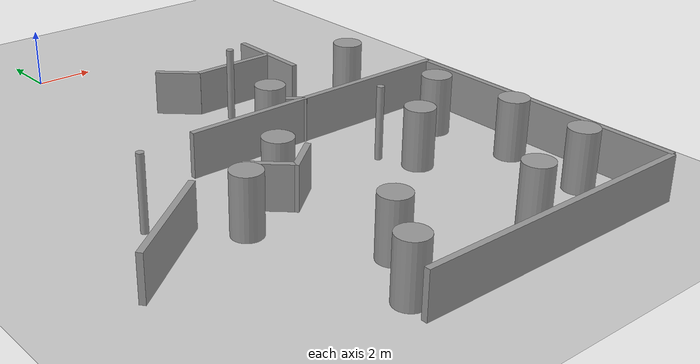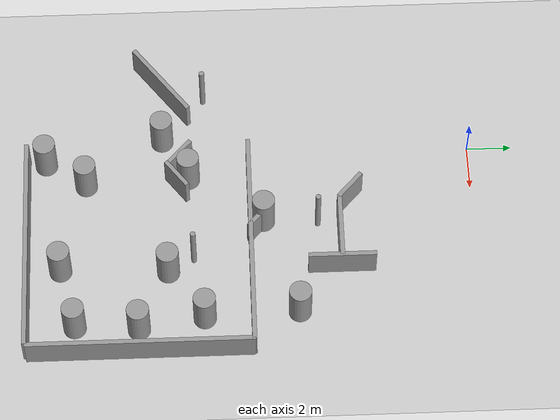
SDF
<sdf version="1.7">
 <world name="default">
  <model name="ground_plane">
   <static>1</static>
   <link name="link">
    <collision name="collision">
     <geometry><plane><normal>0 0 1</normal><size>100 100</size></plane></geometry>
     <surface><friction><ode><mu>100</mu><mu2>50</mu2></ode></friction></surface>
    </collision>
    <visual name="visual">
     <cast_shadows>0</cast_shadows>
     <geometry><plane><normal>0 0 1</normal><size>100 100</size></plane></geometry>
     <material>
      <script><uri>file://media/materials/scripts/gazebo.material</uri><name>Gazebo/Grey</name></script>
     </material>
    </visual>
   </link>
  </model>
  <model name="wall_10x3_clone_1">
   <link name="link">
    <inertial>
     <mass>1</mass>
     <inertia>
      <ixx>0.166667</ixx>
      <ixy>0</ixy>
      <ixz>0</ixz>
      <iyy>0.166667</iyy>
      <iyz>0</iyz>
      <izz>0.166667</izz>
     </inertia>
    </inertial>
    <visual name="visual">
     <geometry><box><size>10 0.2 1.5</size></box></geometry>
     <material>
      <script><name>Gazebo/Grey</name><uri>file://media/materials/scripts/gazebo.material</uri></script>
      <shader type="pixel"><normal_map>__default__</normal_map></shader>
      <ambient>0.3 0.3 0.3 1</ambient>
      <diffuse>0.7 0.7 0.7 1</diffuse>
      <specular>0.01 0.01 0.01 1</specular>
      <emissive>0 0 0 1</emissive>
     </material>
    </visual>
    <collision name="collision">
     <geometry><box><size>10 0.2 1.5</size></box></geometry>
     <surface>
      <friction>
       <ode><mu>1</mu><mu2>1</mu2><fdir1>0 0 0</fdir1><slip1>0</slip1><slip2>0</slip2></ode>
       <torsional>
        <coefficient>1</coefficient>
        <patch_radius>0</patch_radius>
        <surface_radius>0</surface_radius>
        <use_patch_radius>1</use_patch_radius>
        <ode><slip>0</slip></ode>
       </torsional>
      </friction>
      <bounce><restitution_coefficient>0</restitution_coefficient><threshold>1e+06</threshold></bounce>
      <contact>
       <collide_without_contact>0</collide_without_contact>
       <collide_without_contact_bitmask>1</collide_without_contact_bitmask>
       <collide_bitmask>1</collide_bitmask>
       <ode>
        <soft_cfm>0</soft_cfm>
        <soft_erp>0.2</soft_erp>
        <kp>1e+13</kp>
        <kd>1</kd>
        <max_vel>0.01</max_vel>
        <min_depth>0</min_depth>
       </ode>
       <bullet>
        <split_impulse>1</split_impulse>
        <split_impulse_penetration_threshold>-0.01</split_impulse_penetration_threshold>
        <soft_cfm>0</soft_cfm>
        <soft_erp>0.2</soft_erp>
        <kp>1e+13</kp>
        <kd>1</kd>
       </bullet>
      </contact>
     </surface>
    </collision>
   </link>
   <static>1</static>
   <pose>5 -10 0.75 0 -0 0</pose>
  </model>
  <model name="wall_10x3_clone_3_clone_0_clone_clone_clone_clone_0">
   <link name="link">
    <inertial>
     <mass>1</mass>
     <inertia>
      <ixx>0.166667</ixx>
      <ixy>0</ixy>
      <ixz>0</ixz>
      <iyy>0.166667</iyy>
      <iyz>0</iyz>
      <izz>0.166667</izz>
     </inertia>
    </inertial>
    <visual name="visual">
     <geometry><box><size>3 0.2 1.5</size></box></geometry>
     <material>
      <script><name>Gazebo/Grey</name><uri>file://media/materials/scripts/gazebo.material</uri></script>
      <shader type="pixel"><normal_map>__default__</normal_map></shader>
      <ambient>0.3 0.3 0.3 1</ambient>
      <diffuse>0.7 0.7 0.7 1</diffuse>
      <specular>0.01 0.01 0.01 1</specular>
      <emissive>0 0 0 1</emissive>
     </material>
    </visual>
    <collision name="collision">
     <geometry><box><size>3 0.2 1.5</size></box></geometry>
     <surface>
      <friction>
       <ode><mu>1</mu><mu2>1</mu2><fdir1>0 0 0</fdir1><slip1>0</slip1><slip2>0</slip2></ode>
       <torsional>
        <coefficient>1</coefficient>
        <patch_radius>0</patch_radius>
        <surface_radius>0</surface_radius>
        <use_patch_radius>1</use_patch_radius>
        <ode><slip>0</slip></ode>
       </torsional>
      </friction>
      <bounce><restitution_coefficient>0</restitution_coefficient><threshold>1e+06</threshold></bounce>
      <contact>
       <collide_without_contact>0</collide_without_contact>
       <collide_without_contact_bitmask>1</collide_without_contact_bitmask>
       <collide_bitmask>1</collide_bitmask>
       <ode>
        <soft_cfm>0</soft_cfm>
        <soft_erp>0.2</soft_erp>
        <kp>1e+13</kp>
        <kd>1</kd>
        <max_vel>0.01</max_vel>
        <min_depth>0</min_depth>
       </ode>
       <bullet>
        <split_impulse>1</split_impulse>
        <split_impulse_penetration_threshold>-0.01</split_impulse_penetration_threshold>
        <soft_cfm>0</soft_cfm>
        <soft_erp>0.2</soft_erp>
        <kp>1e+13</kp>
        <kd>1</kd>
       </bullet>
      </contact>
     </surface>
    </collision>
   </link>
   <static>1</static>
   <pose>6 -6 0.75 0 -0 1.5708</pose>
  </model>
  <model name="wall_10x3_clone_3_clone_0_clone_clone_clone_clone_clone">
   <link name="link">
    <inertial>
     <mass>1</mass>
     <inertia>
      <ixx>0.166667</ixx>
      <ixy>0</ixy>
      <ixz>0</ixz>
      <iyy>0.166667</iyy>
      <iyz>0</iyz>
      <izz>0.166667</izz>
     </inertia>
    </inertial>
    <visual name="visual">
     <geometry><box><size>3 0.2 1.5</size></box></geometry>
     <material>
      <script><name>Gazebo/Grey</name><uri>file://media/materials/scripts/gazebo.material</uri></script>
      <shader type="pixel"><normal_map>__default__</normal_map></shader>
      <ambient>0.3 0.3 0.3 1</ambient>
      <diffuse>0.7 0.7 0.7 1</diffuse>
      <specular>0.01 0.01 0.01 1</specular>
      <emissive>0 0 0 1</emissive>
     </material>
    </visual>
    <collision name="collision">
     <geometry><box><size>3 0.2 1.5</size></box></geometry>
     <surface>
      <friction>
       <ode><mu>1</mu><mu2>1</mu2><fdir1>0 0 0</fdir1><slip1>0</slip1><slip2>0</slip2></ode>
       <torsional>
        <coefficient>1</coefficient>
        <patch_radius>0</patch_radius>
        <surface_radius>0</surface_radius>
        <use_patch_radius>1</use_patch_radius>
        <ode><slip>0</slip></ode>
       </torsional>
      </friction>
      <bounce><restitution_coefficient>0</restitution_coefficient><threshold>1e+06</threshold></bounce>
      <contact>
       <collide_without_contact>0</collide_without_contact>
       <collide_without_contact_bitmask>1</collide_without_contact_bitmask>
       <collide_bitmask>1</collide_bitmask>
       <ode>
        <soft_cfm>0</soft_cfm>
        <soft_erp>0.2</soft_erp>
        <kp>1e+13</kp>
        <kd>1</kd>
        <max_vel>0.01</max_vel>
        <min_depth>0</min_depth>
       </ode>
       <bullet>
        <split_impulse>1</split_impulse>
        <split_impulse_penetration_threshold>-0.01</split_impulse_penetration_threshold>
        <soft_cfm>0</soft_cfm>
        <soft_erp>0.2</soft_erp>
        <kp>1e+13</kp>
        <kd>1</kd>
       </bullet>
      </contact>
     </surface>
    </collision>
   </link>
   <static>1</static>
   <pose>4.5 -6 0.75 0 -0 0</pose>
  </model>
  <model name="wall_10x3_clone_3_clone_0_clone_clone_clone_clone_clone_0_clone_clone">
   <link name="link">
    <inertial>
     <mass>0.514545</mass>
     <inertia>
      <ixx>0.0981923</ixx>
      <ixy>0</ixy>
      <ixz>0</ixz>
      <iyy>0.198649</iyy>
      <iyz>0</iyz>
      <izz>0.103887</izz>
     </inertia>
    </inertial>
    <pose>0 0 0 0 0 -0.740677</pose>
    <visual name="visual">
     <geometry><box><size>1.54363 0.2 1.5</size></box></geometry>
     <material>
      <script><name>Gazebo/Grey</name><uri>file://media/materials/scripts/gazebo.material</uri></script>
      <shader type="pixel"><normal_map>__default__</normal_map></shader>
      <ambient>0.3 0.3 0.3 1</ambient>
      <diffuse>0.7 0.7 0.7 1</diffuse>
      <specular>0.01 0.01 0.01 1</specular>
      <emissive>0 0 0 1</emissive>
     </material>
    </visual>
    <collision name="collision">
     <geometry><box><size>1.54363 0.2 1.5</size></box></geometry>
     <surface>
      <friction>
       <ode><mu>1</mu><mu2>1</mu2><fdir1>0 0 0</fdir1><slip1>0</slip1><slip2>0</slip2></ode>
       <torsional>
        <coefficient>1</coefficient>
        <patch_radius>0</patch_radius>
        <surface_radius>0</surface_radius>
        <use_patch_radius>1</use_patch_radius>
        <ode><slip>0</slip></ode>
       </torsional>
      </friction>
      <bounce><restitution_coefficient>0</restitution_coefficient><threshold>1e+06</threshold></bounce>
      <contact>
       <collide_without_contact>0</collide_without_contact>
       <collide_without_contact_bitmask>1</collide_without_contact_bitmask>
       <collide_bitmask>1</collide_bitmask>
       <ode>
        <soft_cfm>0</soft_cfm>
        <soft_erp>0.2</soft_erp>
        <kp>1e+13</kp>
        <kd>1</kd>
        <max_vel>0.01</max_vel>
        <min_depth>0</min_depth>
       </ode>
       <bullet>
        <split_impulse>1</split_impulse>
        <split_impulse_penetration_threshold>-0.01</split_impulse_penetration_threshold>
        <soft_cfm>0</soft_cfm>
        <soft_erp>0.2</soft_erp>
        <kp>1e+13</kp>
        <kd>1</kd>
       </bullet>
      </contact>
     </surface>
    </collision>
   </link>
   <static>1</static>
   <pose>0.533238 -13.1206 0.75 0 -0 0</pose>
  </model>
  <model name="wall_10x3_clone_3_clone_0_clone_clone_clone_clone_clone_0_clone_clone_clone">
   <link name="link">
    <inertial>
     <mass>0.514545</mass>
     <inertia>
      <ixx>0.0981923</ixx>
      <ixy>0</ixy>
      <ixz>0</ixz>
      <iyy>0.198649</iyy>
      <iyz>0</iyz>
      <izz>0.103887</izz>
     </inertia>
    </inertial>
    <pose>0 0 0 0 0 -2.49068</pose>
    <visual name="visual">
     <geometry><box><size>1.54363 0.2 1.5</size></box></geometry>
     <material>
      <script><name>Gazebo/Grey</name><uri>file://media/materials/scripts/gazebo.material</uri></script>
      <shader type="pixel"><normal_map>__default__</normal_map></shader>
      <ambient>0.3 0.3 0.3 1</ambient>
      <diffuse>0.7 0.7 0.7 1</diffuse>
      <specular>0.01 0.01 0.01 1</specular>
      <emissive>0 0 0 1</emissive>
     </material>
    </visual>
    <collision name="collision">
     <geometry><box><size>1.54363 0.2 1.5</size></box></geometry>
     <surface>
      <friction>
       <ode><mu>1</mu><mu2>1</mu2><fdir1>0 0 0</fdir1><slip1>0</slip1><slip2>0</slip2></ode>
       <torsional>
        <coefficient>1</coefficient>
        <patch_radius>0</patch_radius>
        <surface_radius>0</surface_radius>
        <use_patch_radius>1</use_patch_radius>
        <ode><slip>0</slip></ode>
       </torsional>
      </friction>
      <bounce><restitution_coefficient>0</restitution_coefficient><threshold>1e+06</threshold></bounce>
      <contact>
       <collide_without_contact>0</collide_without_contact>
       <collide_without_contact_bitmask>1</collide_without_contact_bitmask>
       <collide_bitmask>1</collide_bitmask>
       <ode>
        <soft_cfm>0</soft_cfm>
        <soft_erp>0.2</soft_erp>
        <kp>1e+13</kp>
        <kd>1</kd>
        <max_vel>0.01</max_vel>
        <min_depth>0</min_depth>
       </ode>
       <bullet>
        <split_impulse>1</split_impulse>
        <split_impulse_penetration_threshold>-0.01</split_impulse_penetration_threshold>
        <soft_cfm>0</soft_cfm>
        <soft_erp>0.2</soft_erp>
        <kp>1e+13</kp>
        <kd>1</kd>
       </bullet>
      </contact>
     </surface>
    </collision>
   </link>
   <static>1</static>
   <pose>1.62888 -13.2358 0.75 0 -0 0</pose>
  </model>
  <model name="wall_10x3_clone_3_clone_0_clone_clone_clone_clone_clone_0_clone_clone_clone_0">
   <link name="link">
    <inertial>
     <mass>0.514545</mass>
     <inertia>
      <ixx>0.0981923</ixx>
      <ixy>0</ixy>
      <ixz>0</ixz>
      <iyy>0.198649</iyy>
      <iyz>0</iyz>
      <izz>0.103887</izz>
     </inertia>
    </inertial>
    <pose>0 0 0 0 0 -0.740677</pose>
    <visual name="visual">
     <geometry><box><size>1.54363 0.2 1.5</size></box></geometry>
     <material>
      <script><name>Gazebo/Grey</name><uri>file://media/materials/scripts/gazebo.material</uri></script>
      <shader type="pixel"><normal_map>__default__</normal_map></shader>
      <ambient>0.3 0.3 0.3 1</ambient>
      <diffuse>0.7 0.7 0.7 1</diffuse>
      <specular>0.01 0.01 0.01 1</specular>
      <emissive>0 0 0 1</emissive>
     </material>
    </visual>
    <collision name="collision">
     <geometry><box><size>1.54363 0.2 1.5</size></box></geometry>
     <surface>
      <friction>
       <ode><mu>1</mu><mu2>1</mu2><fdir1>0 0 0</fdir1><slip1>0</slip1><slip2>0</slip2></ode>
       <torsional>
        <coefficient>1</coefficient>
        <patch_radius>0</patch_radius>
        <surface_radius>0</surface_radius>
        <use_patch_radius>1</use_patch_radius>
        <ode><slip>0</slip></ode>
       </torsional>
      </friction>
      <bounce><restitution_coefficient>0</restitution_coefficient><threshold>1e+06</threshold></bounce>
      <contact>
       <collide_without_contact>0</collide_without_contact>
       <collide_without_contact_bitmask>1</collide_without_contact_bitmask>
       <collide_bitmask>1</collide_bitmask>
       <ode>
        <soft_cfm>0</soft_cfm>
        <soft_erp>0.2</soft_erp>
        <kp>1e+13</kp>
        <kd>1</kd>
        <max_vel>0.01</max_vel>
        <min_depth>0</min_depth>
       </ode>
       <bullet>
        <split_impulse>1</split_impulse>
        <split_impulse_penetration_threshold>-0.01</split_impulse_penetration_threshold>
        <soft_cfm>0</soft_cfm>
        <soft_erp>0.2</soft_erp>
        <kp>1e+13</kp>
        <kd>1</kd>
       </bullet>
      </contact>
     </surface>
    </collision>
   </link>
   <static>1</static>
   <pose>2.49822 -5.51051 0.75 0 -0 0</pose>
  </model>
  <model name="wall_10x3_clone_3_clone_0_clone_clone_clone_clone_clone_0_clone_clone_clone_2">
   <link name="link">
    <inertial>
     <mass>0.514545</mass>
     <inertia>
      <ixx>0.0981923</ixx>
      <ixy>0</ixy>
      <ixz>0</ixz>
      <iyy>0.198649</iyy>
      <iyz>0</iyz>
      <izz>0.103887</izz>
     </inertia>
    </inertial>
    <pose>0 0 0 0 0 -0.740677</pose>
    <visual name="visual">
     <geometry><box><size>1.54363 0.2 1.5</size></box></geometry>
     <material>
      <script><name>Gazebo/Grey</name><uri>file://media/materials/scripts/gazebo.material</uri></script>
      <shader type="pixel"><normal_map>__default__</normal_map></shader>
      <ambient>0.3 0.3 0.3 1</ambient>
      <diffuse>0.7 0.7 0.7 1</diffuse>
      <specular>0.01 0.01 0.01 1</specular>
      <emissive>0 0 0 1</emissive>
     </material>
    </visual>
    <collision name="collision">
     <geometry><box><size>1.54363 0.2 1.5</size></box></geometry>
     <surface>
      <friction>
       <ode><mu>1</mu><mu2>1</mu2><fdir1>0 0 0</fdir1><slip1>0</slip1><slip2>0</slip2></ode>
       <torsional>
        <coefficient>1</coefficient>
        <patch_radius>0</patch_radius>
        <surface_radius>0</surface_radius>
        <use_patch_radius>1</use_patch_radius>
        <ode><slip>0</slip></ode>
       </torsional>
      </friction>
      <bounce><restitution_coefficient>0</restitution_coefficient><threshold>1e+06</threshold></bounce>
      <contact>
       <collide_without_contact>0</collide_without_contact>
       <collide_without_contact_bitmask>1</collide_without_contact_bitmask>
       <collide_bitmask>1</collide_bitmask>
       <ode>
        <soft_cfm>0</soft_cfm>
        <soft_erp>0.2</soft_erp>
        <kp>1e+13</kp>
        <kd>1</kd>
        <max_vel>0.01</max_vel>
        <min_depth>0</min_depth>
       </ode>
       <bullet>
        <split_impulse>1</split_impulse>
        <split_impulse_penetration_threshold>-0.01</split_impulse_penetration_threshold>
        <soft_cfm>0</soft_cfm>
        <soft_erp>0.2</soft_erp>
        <kp>1e+13</kp>
        <kd>1</kd>
       </bullet>
      </contact>
     </surface>
    </collision>
   </link>
   <static>1</static>
   <pose>3.85309 -9.56434 0.75 0 -0 0</pose>
  </model>
  <model name="unit_cylinder_clone_8_clone_0">
   <link name="link">
    <inertial>
     <mass>1</mass>
     <inertia><ixx>0.145833</ixx><ixy>0</ixy><ixz>0</ixz><iyy>0.145833</iyy><iyz>0</iyz><izz>0.125</izz></inertia>
    </inertial>
    <visual name="visual">
     <geometry><cylinder><radius>0.5</radius><length>2</length></cylinder></geometry>
     <material>
      <script><name>Gazebo/Grey</name><uri>file://media/materials/scripts/gazebo.material</uri></script>
      <shader type="pixel"><normal_map>__default__</normal_map></shader>
      <ambient>0.3 0.3 0.3 1</ambient>
      <diffuse>0.7 0.7 0.7 1</diffuse>
      <specular>0.01 0.01 0.01 1</specular>
      <emissive>0 0 0 1</emissive>
     </material>
    </visual>
    <collision name="collision">
     <geometry><cylinder><radius>0.5</radius><length>2</length></cylinder></geometry>
     <surface>
      <friction>
       <ode><mu>1</mu><mu2>1</mu2><fdir1>0 0 0</fdir1><slip1>0</slip1><slip2>0</slip2></ode>
       <torsional>
        <coefficient>1</coefficient>
        <patch_radius>0</patch_radius>
        <surface_radius>0</surface_radius>
        <use_patch_radius>1</use_patch_radius>
        <ode><slip>0</slip></ode>
       </torsional>
      </friction>
      <bounce><restitution_coefficient>0</restitution_coefficient><threshold>1e+06</threshold></bounce>
      <contact>
       <collide_without_contact>0</collide_without_contact>
       <collide_without_contact_bitmask>1</collide_without_contact_bitmask>
       <collide_bitmask>1</collide_bitmask>
       <ode>
        <soft_cfm>0</soft_cfm>
        <soft_erp>0.2</soft_erp>
        <kp>1e+13</kp>
        <kd>1</kd>
        <max_vel>0.01</max_vel>
        <min_depth>0</min_depth>
       </ode>
       <bullet>
        <split_impulse>1</split_impulse>
        <split_impulse_penetration_threshold>-0.01</split_impulse_penetration_threshold>
        <soft_cfm>0</soft_cfm>
        <soft_erp>0.2</soft_erp>
        <kp>1e+13</kp>
        <kd>1</kd>
       </bullet>
      </contact>
     </surface>
    </collision>
   </link>
   <static>0</static>
   <pose>3.4509 -9.39999 0.999997 0 -0 -0.022183</pose>
  </model>
  <model name="unit_cylinder_clone_8_clone_3">
   <link name="link">
    <inertial>
     <mass>1</mass>
     <inertia><ixx>0.145833</ixx><ixy>0</ixy><ixz>0</ixz><iyy>0.145833</iyy><iyz>0</iyz><izz>0.125</izz></inertia>
    </inertial>
    <visual name="visual">
     <geometry><cylinder><radius>0.5</radius><length>2</length></cylinder></geometry>
     <material>
      <script><name>Gazebo/Grey</name><uri>file://media/materials/scripts/gazebo.material</uri></script>
      <shader type="pixel"><normal_map>__default__</normal_map></shader>
      <ambient>0.3 0.3 0.3 1</ambient>
      <diffuse>0.7 0.7 0.7 1</diffuse>
      <specular>0.01 0.01 0.01 1</specular>
      <emissive>0 0 0 1</emissive>
     </material>
    </visual>
    <collision name="collision">
     <geometry><cylinder><radius>0.5</radius><length>2</length></cylinder></geometry>
     <surface>
      <friction>
       <ode><mu>1</mu><mu2>1</mu2><fdir1>0 0 0</fdir1><slip1>0</slip1><slip2>0</slip2></ode>
       <torsional>
        <coefficient>1</coefficient>
        <patch_radius>0</patch_radius>
        <surface_radius>0</surface_radius>
        <use_patch_radius>1</use_patch_radius>
        <ode><slip>0</slip></ode>
       </torsional>
      </friction>
      <bounce><restitution_coefficient>0</restitution_coefficient><threshold>1e+06</threshold></bounce>
      <contact>
       <collide_without_contact>0</collide_without_contact>
       <collide_without_contact_bitmask>1</collide_without_contact_bitmask>
       <collide_bitmask>1</collide_bitmask>
       <ode>
        <soft_cfm>0</soft_cfm>
        <soft_erp>0.2</soft_erp>
        <kp>1e+13</kp>
        <kd>1</kd>
        <max_vel>0.01</max_vel>
        <min_depth>0</min_depth>
       </ode>
       <bullet>
        <split_impulse>1</split_impulse>
        <split_impulse_penetration_threshold>-0.01</split_impulse_penetration_threshold>
        <soft_cfm>0</soft_cfm>
        <soft_erp>0.2</soft_erp>
        <kp>1e+13</kp>
        <kd>1</kd>
       </bullet>
      </contact>
     </surface>
    </collision>
   </link>
   <static>0</static>
   <pose>8.04889 -7.94549 0.999994 0 0 -0.022181</pose>
  </model>
  <model name="wall_10x3_clone_0_clone_1">
   <link name="link">
    <inertial>
     <mass>1</mass>
     <inertia>
      <ixx>0.166667</ixx>
      <ixy>0</ixy>
      <ixz>0</ixz>
      <iyy>0.166667</iyy>
      <iyz>0</iyz>
      <izz>0.166667</izz>
     </inertia>
    </inertial>
    <visual name="visual">
     <geometry><box><size>10 0.2 1.5</size></box></geometry>
     <material>
      <script><name>Gazebo/Grey</name><uri>file://media/materials/scripts/gazebo.material</uri></script>
      <shader type="pixel"><normal_map>__default__</normal_map></shader>
      <ambient>0.3 0.3 0.3 1</ambient>
      <diffuse>0.7 0.7 0.7 1</diffuse>
      <specular>0.01 0.01 0.01 1</specular>
      <emissive>0 0 0 1</emissive>
     </material>
    </visual>
    <collision name="collision">
     <geometry><box><size>10 0.2 1.5</size></box></geometry>
     <surface>
      <friction>
       <ode><mu>1</mu><mu2>1</mu2><fdir1>0 0 0</fdir1><slip1>0</slip1><slip2>0</slip2></ode>
       <torsional>
        <coefficient>1</coefficient>
        <patch_radius>0</patch_radius>
        <surface_radius>0</surface_radius>
        <use_patch_radius>1</use_patch_radius>
        <ode><slip>0</slip></ode>
       </torsional>
      </friction>
      <bounce><restitution_coefficient>0</restitution_coefficient><threshold>1e+06</threshold></bounce>
      <contact>
       <collide_without_contact>0</collide_without_contact>
       <collide_without_contact_bitmask>1</collide_without_contact_bitmask>
       <collide_bitmask>1</collide_bitmask>
       <ode>
        <soft_cfm>0</soft_cfm>
        <soft_erp>0.2</soft_erp>
        <kp>1e+13</kp>
        <kd>1</kd>
        <max_vel>0.01</max_vel>
        <min_depth>0</min_depth>
       </ode>
       <bullet>
        <split_impulse>1</split_impulse>
        <split_impulse_penetration_threshold>-0.01</split_impulse_penetration_threshold>
        <soft_cfm>0</soft_cfm>
        <soft_erp>0.2</soft_erp>
        <kp>1e+13</kp>
        <kd>1</kd>
       </bullet>
      </contact>
     </surface>
    </collision>
   </link>
   <static>1</static>
   <pose>4.90675 -19.9686 0.75 0 -0 0</pose>
  </model>
  <model name="wall_10x3_clone_3_clone_0_clone_1">
   <link name="link">
    <inertial>
     <mass>1</mass>
     <inertia>
      <ixx>0.166667</ixx>
      <ixy>0</ixy>
      <ixz>0</ixz>
      <iyy>0.166667</iyy>
      <iyz>0</iyz>
      <izz>0.166667</izz>
     </inertia>
    </inertial>
    <visual name="visual">
     <geometry><box><size>10 0.2 1.5</size></box></geometry>
     <material>
      <script><name>Gazebo/Grey</name><uri>file://media/materials/scripts/gazebo.material</uri></script>
      <shader type="pixel"><normal_map>__default__</normal_map></shader>
      <ambient>0.3 0.3 0.3 1</ambient>
      <diffuse>0.7 0.7 0.7 1</diffuse>
      <specular>0.01 0.01 0.01 1</specular>
      <emissive>0 0 0 1</emissive>
     </material>
    </visual>
    <collision name="collision">
     <geometry><box><size>10 0.2 1.5</size></box></geometry>
     <surface>
      <friction>
       <ode><mu>1</mu><mu2>1</mu2><fdir1>0 0 0</fdir1><slip1>0</slip1><slip2>0</slip2></ode>
       <torsional>
        <coefficient>1</coefficient>
        <patch_radius>0</patch_radius>
        <surface_radius>0</surface_radius>
        <use_patch_radius>1</use_patch_radius>
        <ode><slip>0</slip></ode>
       </torsional>
      </friction>
      <bounce><restitution_coefficient>0</restitution_coefficient><threshold>1e+06</threshold></bounce>
      <contact>
       <collide_without_contact>0</collide_without_contact>
       <collide_without_contact_bitmask>1</collide_without_contact_bitmask>
       <collide_bitmask>1</collide_bitmask>
       <ode>
        <soft_cfm>0</soft_cfm>
        <soft_erp>0.2</soft_erp>
        <kp>1e+13</kp>
        <kd>1</kd>
        <max_vel>0.01</max_vel>
        <min_depth>0</min_depth>
       </ode>
       <bullet>
        <split_impulse>1</split_impulse>
        <split_impulse_penetration_threshold>-0.01</split_impulse_penetration_threshold>
        <soft_cfm>0</soft_cfm>
        <soft_erp>0.2</soft_erp>
        <kp>1e+13</kp>
        <kd>1</kd>
       </bullet>
      </contact>
     </surface>
    </collision>
   </link>
   <static>1</static>
   <pose>9.95073 -14.9568 0.75 0 -0 1.5708</pose>
  </model>
  <model name="unit_cylinder_clone_8_clone_3_clone_1">
   <link name="link">
    <inertial>
     <mass>1</mass>
     <inertia><ixx>0.145833</ixx><ixy>0</ixy><ixz>0</ixz><iyy>0.145833</iyy><iyz>0</iyz><izz>0.125</izz></inertia>
    </inertial>
    <visual name="visual">
     <geometry><cylinder><radius>0.5</radius><length>2</length></cylinder></geometry>
     <material>
      <script><name>Gazebo/Grey</name><uri>file://media/materials/scripts/gazebo.material</uri></script>
      <shader type="pixel"><normal_map>__default__</normal_map></shader>
      <ambient>0.3 0.3 0.3 1</ambient>
      <diffuse>0.7 0.7 0.7 1</diffuse>
      <specular>0.01 0.01 0.01 1</specular>
      <emissive>0 0 0 1</emissive>
     </material>
    </visual>
    <collision name="collision">
     <geometry><cylinder><radius>0.5</radius><length>2</length></cylinder></geometry>
     <surface>
      <friction>
       <ode><mu>1</mu><mu2>1</mu2><fdir1>0 0 0</fdir1><slip1>0</slip1><slip2>0</slip2></ode>
       <torsional>
        <coefficient>1</coefficient>
        <patch_radius>0</patch_radius>
        <surface_radius>0</surface_radius>
        <use_patch_radius>1</use_patch_radius>
        <ode><slip>0</slip></ode>
       </torsional>
      </friction>
      <bounce><restitution_coefficient>0</restitution_coefficient><threshold>1e+06</threshold></bounce>
      <contact>
       <collide_without_contact>0</collide_without_contact>
       <collide_without_contact_bitmask>1</collide_without_contact_bitmask>
       <collide_bitmask>1</collide_bitmask>
       <ode>
        <soft_cfm>0</soft_cfm>
        <soft_erp>0.2</soft_erp>
        <kp>1e+13</kp>
        <kd>1</kd>
        <max_vel>0.01</max_vel>
        <min_depth>0</min_depth>
       </ode>
       <bullet>
        <split_impulse>1</split_impulse>
        <split_impulse_penetration_threshold>-0.01</split_impulse_penetration_threshold>
        <soft_cfm>0</soft_cfm>
        <soft_erp>0.2</soft_erp>
        <kp>1e+13</kp>
        <kd>1</kd>
       </bullet>
      </contact>
     </surface>
    </collision>
   </link>
   <static>0</static>
   <pose>5.69497 -18.4882 0.999995 -0 -0 -0.022183</pose>
  </model>
  <model name="unit_cylinder_clone_8_clone_3_clone_3">
   <link name="link">
    <inertial>
     <mass>1</mass>
     <inertia><ixx>0.145833</ixx><ixy>0</ixy><ixz>0</ixz><iyy>0.145833</iyy><iyz>0</iyz><izz>0.125</izz></inertia>
    </inertial>
    <visual name="visual">
     <geometry><cylinder><radius>0.5</radius><length>2</length></cylinder></geometry>
     <material>
      <script><name>Gazebo/Grey</name><uri>file://media/materials/scripts/gazebo.material</uri></script>
      <shader type="pixel"><normal_map>__default__</normal_map></shader>
      <ambient>0.3 0.3 0.3 1</ambient>
      <diffuse>0.7 0.7 0.7 1</diffuse>
      <specular>0.01 0.01 0.01 1</specular>
      <emissive>0 0 0 1</emissive>
     </material>
    </visual>
    <collision name="collision">
     <geometry><cylinder><radius>0.5</radius><length>2</length></cylinder></geometry>
     <surface>
      <friction>
       <ode><mu>1</mu><mu2>1</mu2><fdir1>0 0 0</fdir1><slip1>0</slip1><slip2>0</slip2></ode>
       <torsional>
        <coefficient>1</coefficient>
        <patch_radius>0</patch_radius>
        <surface_radius>0</surface_radius>
        <use_patch_radius>1</use_patch_radius>
        <ode><slip>0</slip></ode>
       </torsional>
      </friction>
      <bounce><restitution_coefficient>0</restitution_coefficient><threshold>1e+06</threshold></bounce>
      <contact>
       <collide_without_contact>0</collide_without_contact>
       <collide_without_contact_bitmask>1</collide_without_contact_bitmask>
       <collide_bitmask>1</collide_bitmask>
       <ode>
        <soft_cfm>0</soft_cfm>
        <soft_erp>0.2</soft_erp>
        <kp>1e+13</kp>
        <kd>1</kd>
        <max_vel>0.01</max_vel>
        <min_depth>0</min_depth>
       </ode>
       <bullet>
        <split_impulse>1</split_impulse>
        <split_impulse_penetration_threshold>-0.01</split_impulse_penetration_threshold>
        <soft_cfm>0</soft_cfm>
        <soft_erp>0.2</soft_erp>
        <kp>1e+13</kp>
        <kd>1</kd>
       </bullet>
      </contact>
     </surface>
    </collision>
   </link>
   <static>0</static>
   <pose>8.51601 -17.8461 0.999994 0 0 -0.022183</pose>
  </model>
  <model name="unit_cylinder_clone_8_clone_3_clone_4">
   <link name="link">
    <inertial>
     <mass>1</mass>
     <inertia><ixx>0.145833</ixx><ixy>0</ixy><ixz>0</ixz><iyy>0.145833</iyy><iyz>0</iyz><izz>0.125</izz></inertia>
    </inertial>
    <visual name="visual">
     <geometry><cylinder><radius>0.5</radius><length>2</length></cylinder></geometry>
     <material>
      <script><name>Gazebo/Grey</name><uri>file://media/materials/scripts/gazebo.material</uri></script>
      <shader type="pixel"><normal_map>__default__</normal_map></shader>
      <ambient>0.3 0.3 0.3 1</ambient>
      <diffuse>0.7 0.7 0.7 1</diffuse>
      <specular>0.01 0.01 0.01 1</specular>
      <emissive>0 0 0 1</emissive>
     </material>
    </visual>
    <collision name="collision">
     <geometry><cylinder><radius>0.5</radius><length>2</length></cylinder></geometry>
     <surface>
      <friction>
       <ode><mu>1</mu><mu2>1</mu2><fdir1>0 0 0</fdir1><slip1>0</slip1><slip2>0</slip2></ode>
       <torsional>
        <coefficient>1</coefficient>
        <patch_radius>0</patch_radius>
        <surface_radius>0</surface_radius>
        <use_patch_radius>1</use_patch_radius>
        <ode><slip>0</slip></ode>
       </torsional>
      </friction>
      <bounce><restitution_coefficient>0</restitution_coefficient><threshold>1e+06</threshold></bounce>
      <contact>
       <collide_without_contact>0</collide_without_contact>
       <collide_without_contact_bitmask>1</collide_without_contact_bitmask>
       <collide_bitmask>1</collide_bitmask>
       <ode>
        <soft_cfm>0</soft_cfm>
        <soft_erp>0.2</soft_erp>
        <kp>1e+13</kp>
        <kd>1</kd>
        <max_vel>0.01</max_vel>
        <min_depth>0</min_depth>
       </ode>
       <bullet>
        <split_impulse>1</split_impulse>
        <split_impulse_penetration_threshold>-0.01</split_impulse_penetration_threshold>
        <soft_cfm>0</soft_cfm>
        <soft_erp>0.2</soft_erp>
        <kp>1e+13</kp>
        <kd>1</kd>
       </bullet>
      </contact>
     </surface>
    </collision>
   </link>
   <static>0</static>
   <pose>8.23921 -12.1349 0.999994 0 0 -0.022183</pose>
  </model>
  <model name="unit_cylinder_clone_8_clone_3_clone_5">
   <link name="link">
    <inertial>
     <mass>1</mass>
     <inertia><ixx>0.145833</ixx><ixy>0</ixy><ixz>0</ixz><iyy>0.145833</iyy><iyz>0</iyz><izz>0.125</izz></inertia>
    </inertial>
    <visual name="visual">
     <geometry><cylinder><radius>0.5</radius><length>2</length></cylinder></geometry>
     <material>
      <script><name>Gazebo/Grey</name><uri>file://media/materials/scripts/gazebo.material</uri></script>
      <shader type="pixel"><normal_map>__default__</normal_map></shader>
      <ambient>0.3 0.3 0.3 1</ambient>
      <diffuse>0.7 0.7 0.7 1</diffuse>
      <specular>0.01 0.01 0.01 1</specular>
      <emissive>0 0 0 1</emissive>
     </material>
    </visual>
    <collision name="collision">
     <geometry><cylinder><radius>0.5</radius><length>2</length></cylinder></geometry>
     <surface>
      <friction>
       <ode><mu>1</mu><mu2>1</mu2><fdir1>0 0 0</fdir1><slip1>0</slip1><slip2>0</slip2></ode>
       <torsional>
        <coefficient>1</coefficient>
        <patch_radius>0</patch_radius>
        <surface_radius>0</surface_radius>
        <use_patch_radius>1</use_patch_radius>
        <ode><slip>0</slip></ode>
       </torsional>
      </friction>
      <bounce><restitution_coefficient>0</restitution_coefficient><threshold>1e+06</threshold></bounce>
      <contact>
       <collide_without_contact>0</collide_without_contact>
       <collide_without_contact_bitmask>1</collide_without_contact_bitmask>
       <collide_bitmask>1</collide_bitmask>
       <ode>
        <soft_cfm>0</soft_cfm>
        <soft_erp>0.2</soft_erp>
        <kp>1e+13</kp>
        <kd>1</kd>
        <max_vel>0.01</max_vel>
        <min_depth>0</min_depth>
       </ode>
       <bullet>
        <split_impulse>1</split_impulse>
        <split_impulse_penetration_threshold>-0.01</split_impulse_penetration_threshold>
        <soft_cfm>0</soft_cfm>
        <soft_erp>0.2</soft_erp>
        <kp>1e+13</kp>
        <kd>1</kd>
       </bullet>
      </contact>
     </surface>
    </collision>
   </link>
   <static>0</static>
   <pose>5.91155 -13.705 0.999997 0 -0 -0.022184</pose>
  </model>
  <model name="unit_cylinder_clone_8_clone_3_clone_6">
   <link name="link">
    <inertial>
     <mass>1</mass>
     <inertia><ixx>0.145833</ixx><ixy>0</ixy><ixz>0</ixz><iyy>0.145833</iyy><iyz>0</iyz><izz>0.125</izz></inertia>
    </inertial>
    <visual name="visual">
     <geometry><cylinder><radius>0.5</radius><length>2</length></cylinder></geometry>
     <material>
      <script><name>Gazebo/Grey</name><uri>file://media/materials/scripts/gazebo.material</uri></script>
      <shader type="pixel"><normal_map>__default__</normal_map></shader>
      <ambient>0.3 0.3 0.3 1</ambient>
      <diffuse>0.7 0.7 0.7 1</diffuse>
      <specular>0.01 0.01 0.01 1</specular>
      <emissive>0 0 0 1</emissive>
     </material>
    </visual>
    <collision name="collision">
     <geometry><cylinder><radius>0.5</radius><length>2</length></cylinder></geometry>
     <surface>
      <friction>
       <ode><mu>1</mu><mu2>1</mu2><fdir1>0 0 0</fdir1><slip1>0</slip1><slip2>0</slip2></ode>
       <torsional>
        <coefficient>1</coefficient>
        <patch_radius>0</patch_radius>
        <surface_radius>0</surface_radius>
        <use_patch_radius>1</use_patch_radius>
        <ode><slip>0</slip></ode>
       </torsional>
      </friction>
      <bounce><restitution_coefficient>0</restitution_coefficient><threshold>1e+06</threshold></bounce>
      <contact>
       <collide_without_contact>0</collide_without_contact>
       <collide_without_contact_bitmask>1</collide_without_contact_bitmask>
       <collide_bitmask>1</collide_bitmask>
       <ode>
        <soft_cfm>0</soft_cfm>
        <soft_erp>0.2</soft_erp>
        <kp>1e+13</kp>
        <kd>1</kd>
        <max_vel>0.01</max_vel>
        <min_depth>0</min_depth>
       </ode>
       <bullet>
        <split_impulse>1</split_impulse>
        <split_impulse_penetration_threshold>-0.01</split_impulse_penetration_threshold>
        <soft_cfm>0</soft_cfm>
        <soft_erp>0.2</soft_erp>
        <kp>1e+13</kp>
        <kd>1</kd>
       </bullet>
      </contact>
     </surface>
    </collision>
   </link>
   <static>0</static>
   <pose>0.216806 -19.1554 0.999997 0 -0 -0.022185</pose>
  </model>
  <model name="unit_cylinder_clone_8_clone_3_clone_7">
   <link name="link">
    <inertial>
     <mass>1</mass>
     <inertia><ixx>0.145833</ixx><ixy>0</ixy><ixz>0</ixz><iyy>0.145833</iyy><iyz>0</iyz><izz>0.125</izz></inertia>
    </inertial>
    <visual name="visual">
     <geometry><cylinder><radius>0.5</radius><length>2</length></cylinder></geometry>
     <material>
      <script><name>Gazebo/Grey</name><uri>file://media/materials/scripts/gazebo.material</uri></script>
      <shader type="pixel"><normal_map>__default__</normal_map></shader>
      <ambient>0.3 0.3 0.3 1</ambient>
      <diffuse>0.7 0.7 0.7 1</diffuse>
      <specular>0.01 0.01 0.01 1</specular>
      <emissive>0 0 0 1</emissive>
     </material>
    </visual>
    <collision name="collision">
     <geometry><cylinder><radius>0.5</radius><length>2</length></cylinder></geometry>
     <surface>
      <friction>
       <ode><mu>1</mu><mu2>1</mu2><fdir1>0 0 0</fdir1><slip1>0</slip1><slip2>0</slip2></ode>
       <torsional>
        <coefficient>1</coefficient>
        <patch_radius>0</patch_radius>
        <surface_radius>0</surface_radius>
        <use_patch_radius>1</use_patch_radius>
        <ode><slip>0</slip></ode>
       </torsional>
      </friction>
      <bounce><restitution_coefficient>0</restitution_coefficient><threshold>1e+06</threshold></bounce>
      <contact>
       <collide_without_contact>0</collide_without_contact>
       <collide_without_contact_bitmask>1</collide_without_contact_bitmask>
       <collide_bitmask>1</collide_bitmask>
       <ode>
        <soft_cfm>0</soft_cfm>
        <soft_erp>0.2</soft_erp>
        <kp>1e+13</kp>
        <kd>1</kd>
        <max_vel>0.01</max_vel>
        <min_depth>0</min_depth>
       </ode>
       <bullet>
        <split_impulse>1</split_impulse>
        <split_impulse_penetration_threshold>-0.01</split_impulse_penetration_threshold>
        <soft_cfm>0</soft_cfm>
        <soft_erp>0.2</soft_erp>
        <kp>1e+13</kp>
        <kd>1</kd>
       </bullet>
      </contact>
     </surface>
    </collision>
   </link>
   <static>0</static>
   <pose>-0.845105 -13.8923 0.999993 0 0 -0.022186</pose>
  </model>
  <model name="unit_cylinder_clone_8_clone_3_clone_9">
   <link name="link">
    <inertial>
     <mass>1</mass>
     <inertia><ixx>0.145833</ixx><ixy>0</ixy><ixz>0</ixz><iyy>0.145833</iyy><iyz>0</iyz><izz>0.125</izz></inertia>
    </inertial>
    <visual name="visual">
     <geometry><cylinder><radius>0.5</radius><length>2</length></cylinder></geometry>
     <material>
      <script><name>Gazebo/Grey</name><uri>file://media/materials/scripts/gazebo.material</uri></script>
      <shader type="pixel"><normal_map>__default__</normal_map></shader>
      <ambient>0.3 0.3 0.3 1</ambient>
      <diffuse>0.7 0.7 0.7 1</diffuse>
      <specular>0.01 0.01 0.01 1</specular>
      <emissive>0 0 0 1</emissive>
     </material>
    </visual>
    <collision name="collision">
     <geometry><cylinder><radius>0.5</radius><length>2</length></cylinder></geometry>
     <surface>
      <friction>
       <ode><mu>1</mu><mu2>1</mu2><fdir1>0 0 0</fdir1><slip1>0</slip1><slip2>0</slip2></ode>
       <torsional>
        <coefficient>1</coefficient>
        <patch_radius>0</patch_radius>
        <surface_radius>0</surface_radius>
        <use_patch_radius>1</use_patch_radius>
        <ode><slip>0</slip></ode>
       </torsional>
      </friction>
      <bounce><restitution_coefficient>0</restitution_coefficient><threshold>1e+06</threshold></bounce>
      <contact>
       <collide_without_contact>0</collide_without_contact>
       <collide_without_contact_bitmask>1</collide_without_contact_bitmask>
       <collide_bitmask>1</collide_bitmask>
       <ode>
        <soft_cfm>0</soft_cfm>
        <soft_erp>0.2</soft_erp>
        <kp>1e+13</kp>
        <kd>1</kd>
        <max_vel>0.01</max_vel>
        <min_depth>0</min_depth>
       </ode>
       <bullet>
        <split_impulse>1</split_impulse>
        <split_impulse_penetration_threshold>-0.01</split_impulse_penetration_threshold>
        <soft_cfm>0</soft_cfm>
        <soft_erp>0.2</soft_erp>
        <kp>1e+13</kp>
        <kd>1</kd>
       </bullet>
      </contact>
     </surface>
    </collision>
   </link>
   <static>0</static>
   <pose>1.37073 -17.3442 0.999993 0 0 -0.022186</pose>
  </model>
  <model name="unit_cylinder_clone_8_clone_3_clone_10">
   <link name="link">
    <inertial>
     <mass>1</mass>
     <inertia><ixx>0.145833</ixx><ixy>0</ixy><ixz>0</ixz><iyy>0.145833</iyy><iyz>0</iyz><izz>0.125</izz></inertia>
    </inertial>
    <visual name="visual">
     <geometry><cylinder><radius>0.5</radius><length>2</length></cylinder></geometry>
     <material>
      <script><name>Gazebo/Grey</name><uri>file://media/materials/scripts/gazebo.material</uri></script>
      <shader type="pixel"><normal_map>__default__</normal_map></shader>
      <ambient>0.3 0.3 0.3 1</ambient>
      <diffuse>0.7 0.7 0.7 1</diffuse>
      <specular>0.01 0.01 0.01 1</specular>
      <emissive>0 0 0 1</emissive>
     </material>
    </visual>
    <collision name="collision">
     <geometry><cylinder><radius>0.5</radius><length>2</length></cylinder></geometry>
     <surface>
      <friction>
       <ode><mu>1</mu><mu2>1</mu2><fdir1>0 0 0</fdir1><slip1>0</slip1><slip2>0</slip2></ode>
       <torsional>
        <coefficient>1</coefficient>
        <patch_radius>0</patch_radius>
        <surface_radius>0</surface_radius>
        <use_patch_radius>1</use_patch_radius>
        <ode><slip>0</slip></ode>
       </torsional>
      </friction>
      <bounce><restitution_coefficient>0</restitution_coefficient><threshold>1e+06</threshold></bounce>
      <contact>
       <collide_without_contact>0</collide_without_contact>
       <collide_without_contact_bitmask>1</collide_without_contact_bitmask>
       <collide_bitmask>1</collide_bitmask>
       <ode>
        <soft_cfm>0</soft_cfm>
        <soft_erp>0.2</soft_erp>
        <kp>1e+13</kp>
        <kd>1</kd>
        <max_vel>0.01</max_vel>
        <min_depth>0</min_depth>
       </ode>
       <bullet>
        <split_impulse>1</split_impulse>
        <split_impulse_penetration_threshold>-0.01</split_impulse_penetration_threshold>
        <soft_cfm>0</soft_cfm>
        <soft_erp>0.2</soft_erp>
        <kp>1e+13</kp>
        <kd>1</kd>
       </bullet>
      </contact>
     </surface>
    </collision>
   </link>
   <static>0</static>
   <pose>8.69215 -15.0314 0.999997 0 -0 -0.022185</pose>
  </model>
  <model name="unit_cylinder_clone_8_clone_3_clone_11">
   <link name="link">
    <inertial>
     <mass>1</mass>
     <inertia><ixx>0.145833</ixx><ixy>0</ixy><ixz>0</ixz><iyy>0.145833</iyy><iyz>0</iyz><izz>0.125</izz></inertia>
    </inertial>
    <visual name="visual">
     <geometry><cylinder><radius>0.5</radius><length>2</length></cylinder></geometry>
     <material>
      <script><name>Gazebo/Grey</name><uri>file://media/materials/scripts/gazebo.material</uri></script>
      <shader type="pixel"><normal_map>__default__</normal_map></shader>
      <ambient>0.3 0.3 0.3 1</ambient>
      <diffuse>0.7 0.7 0.7 1</diffuse>
      <specular>0.01 0.01 0.01 1</specular>
      <emissive>0 0 0 1</emissive>
     </material>
    </visual>
    <collision name="collision">
     <geometry><cylinder><radius>0.5</radius><length>2</length></cylinder></geometry>
     <surface>
      <friction>
       <ode><mu>1</mu><mu2>1</mu2><fdir1>0 0 0</fdir1><slip1>0</slip1><slip2>0</slip2></ode>
       <torsional>
        <coefficient>1</coefficient>
        <patch_radius>0</patch_radius>
        <surface_radius>0</surface_radius>
        <use_patch_radius>1</use_patch_radius>
        <ode><slip>0</slip></ode>
       </torsional>
      </friction>
      <bounce><restitution_coefficient>0</restitution_coefficient><threshold>1e+06</threshold></bounce>
      <contact>
       <collide_without_contact>0</collide_without_contact>
       <collide_without_contact_bitmask>1</collide_without_contact_bitmask>
       <collide_bitmask>1</collide_bitmask>
       <ode>
        <soft_cfm>0</soft_cfm>
        <soft_erp>0.2</soft_erp>
        <kp>1e+13</kp>
        <kd>1</kd>
        <max_vel>0.01</max_vel>
        <min_depth>0</min_depth>
       </ode>
       <bullet>
        <split_impulse>1</split_impulse>
        <split_impulse_penetration_threshold>-0.01</split_impulse_penetration_threshold>
        <soft_cfm>0</soft_cfm>
        <soft_erp>0.2</soft_erp>
        <kp>1e+13</kp>
        <kd>1</kd>
       </bullet>
      </contact>
     </surface>
    </collision>
   </link>
   <static>0</static>
   <pose>1.164 -12.7206 0.999997 0 -0 -0.022185</pose>
  </model>
  <model name="unit_cylinder_0_clone_15">
   <pose>3.63793 -6.98082 1.23089 0 0 -0.030246</pose>
   <link name="link">
    <inertial>
     <mass>1</mass>
     <inertia><ixx>0.145833</ixx><ixy>0</ixy><ixz>0</ixz><iyy>0.145833</iyy><iyz>0</iyz><izz>0.125</izz></inertia>
    </inertial>
    <collision name="collision">
     <geometry><cylinder><radius>0.120231</radius><length>2.46178</length></cylinder></geometry>
    </collision>
    <visual name="visual">
     <geometry><cylinder><radius>0.120231</radius><length>2.46178</length></cylinder></geometry>
     <material>
      <script><name>Gazebo/Grey</name><uri>file://media/materials/scripts/gazebo.material</uri></script>
     </material>
    </visual>
   </link>
  </model>
  <model name="unit_cylinder_0_clone_16">
   <pose>-2.97612 -11.9949 1.23089 0 0 -0.03139</pose>
   <link name="link">
    <inertial>
     <mass>1</mass>
     <inertia><ixx>0.145833</ixx><ixy>0</ixy><ixz>0</ixz><iyy>0.145833</iyy><iyz>0</iyz><izz>0.125</izz></inertia>
    </inertial>
    <collision name="collision">
     <geometry><cylinder><radius>0.120231</radius><length>2.46178</length></cylinder></geometry>
    </collision>
    <visual name="visual">
     <geometry><cylinder><radius>0.120231</radius><length>2.46178</length></cylinder></geometry>
     <material>
      <script><name>Gazebo/Grey</name><uri>file://media/materials/scripts/gazebo.material</uri></script>
     </material>
    </visual>
   </link>
  </model>
  <model name="unit_cylinder_0_clone_17">
   <pose>5.3088 -12.5627 1.23089 0 0 -0.032127</pose>
   <link name="link">
    <inertial>
     <mass>1</mass>
     <inertia><ixx>0.145833</ixx><ixy>0</ixy><ixz>0</ixz><iyy>0.145833</iyy><iyz>0</iyz><izz>0.125</izz></inertia>
    </inertial>
    <collision name="collision">
     <geometry><cylinder><radius>0.120231</radius><length>2.46178</length></cylinder></geometry>
    </collision>
    <visual name="visual">
     <geometry><cylinder><radius>0.120231</radius><length>2.46178</length></cylinder></geometry>
     <material>
      <script><name>Gazebo/Grey</name><uri>file://media/materials/scripts/gazebo.material</uri></script>
     </material>
    </visual>
   </link>
  </model>
  <model name="wall_10x3_clone_3_clone_0_clone_clone_clone_clone_clone_0_clone_clone_clone_clone_4">
   <link name="link">
    <inertial>
     <mass>0.514545</mass>
     <inertia>
      <ixx>0.0981923</ixx>
      <ixy>0</ixy>
      <ixz>0</ixz>
      <iyy>0.198649</iyy>
      <iyz>0</iyz>
      <izz>0.103887</izz>
     </inertia>
    </inertial>
    <pose>0 0 0 0 0 -2.49068</pose>
    <visual name="visual">
     <geometry><box><size>4.00818 0.2 1.5</size></box></geometry>
     <material>
      <script><name>Gazebo/Grey</name><uri>file://media/materials/scripts/gazebo.material</uri></script>
      <shader type="pixel"><normal_map>__default__</normal_map></shader>
      <ambient>0.3 0.3 0.3 1</ambient>
      <diffuse>0.7 0.7 0.7 1</diffuse>
      <specular>0.01 0.01 0.01 1</specular>
      <emissive>0 0 0 1</emissive>
     </material>
    </visual>
    <collision name="collision">
     <geometry><box><size>4.00818 0.2 1.5</size></box></geometry>
     <surface>
      <friction>
       <ode><mu>1</mu><mu2>1</mu2><fdir1>0 0 0</fdir1><slip1>0</slip1><slip2>0</slip2></ode>
       <torsional>
        <coefficient>1</coefficient>
        <patch_radius>0</patch_radius>
        <surface_radius>0</surface_radius>
        <use_patch_radius>1</use_patch_radius>
        <ode><slip>0</slip></ode>
       </torsional>
      </friction>
      <bounce><restitution_coefficient>0</restitution_coefficient><threshold>1e+06</threshold></bounce>
      <contact>
       <collide_without_contact>0</collide_without_contact>
       <collide_without_contact_bitmask>1</collide_without_contact_bitmask>
       <collide_bitmask>1</collide_bitmask>
       <ode>
        <soft_cfm>0</soft_cfm>
        <soft_erp>0.2</soft_erp>
        <kp>1e+13</kp>
        <kd>1</kd>
        <max_vel>0.01</max_vel>
        <min_depth>0</min_depth>
       </ode>
       <bullet>
        <split_impulse>1</split_impulse>
        <split_impulse_penetration_threshold>-0.01</split_impulse_penetration_threshold>
        <soft_cfm>0</soft_cfm>
        <soft_erp>0.2</soft_erp>
        <kp>1e+13</kp>
        <kd>1</kd>
       </bullet>
      </contact>
     </surface>
    </collision>
   </link>
   <static>1</static>
   <pose>-3.37584 -13.873 0.75 0 -0 0</pose>
  </model>
 </world>
</sdf>
